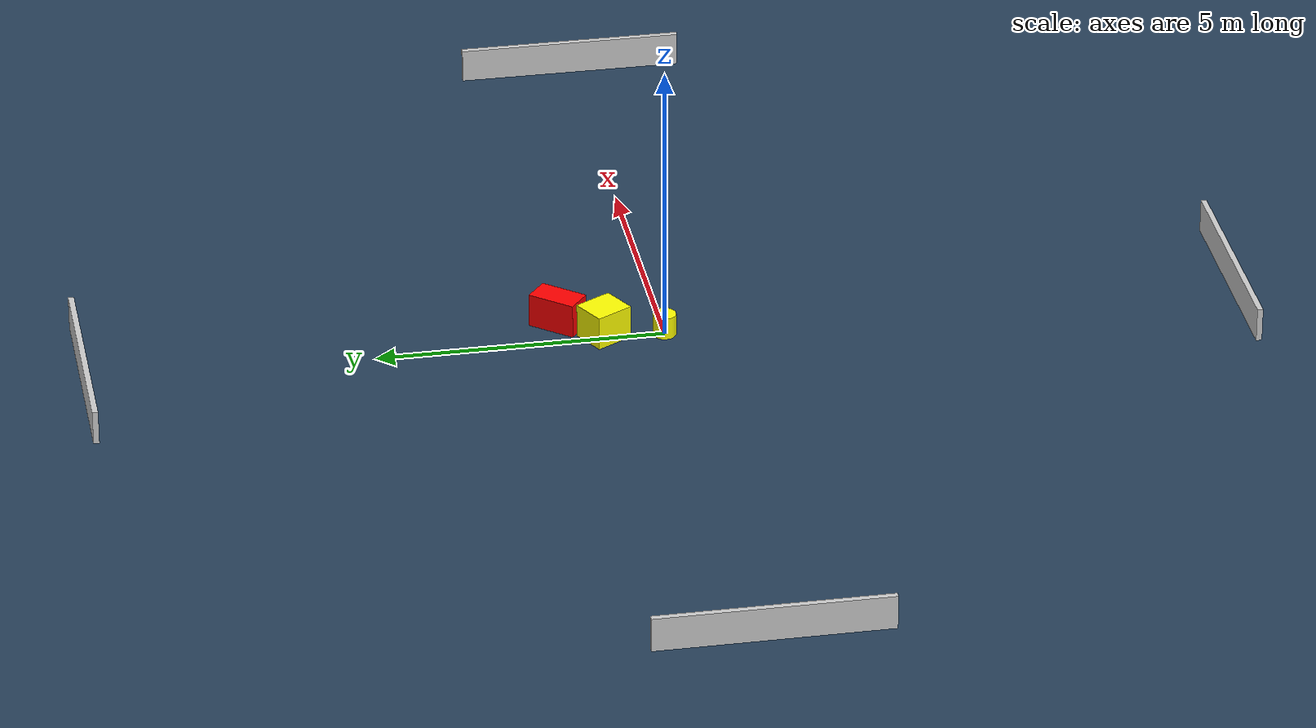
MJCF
<?xml version="1.0" ?>
<mujoco model="generated_environment">
  <option timestep="0.01" integrator="RK4" cone="elliptic"/>
  <default>
    <geom density="1"/>
  </default>
  <asset>
    <texture builtin="gradient" height="3072" name="skybox" rgb1="0.3 0.5 0.7" rgb2="0 0 0" type="skybox" width="512"/>
    <texture builtin="checker" height="300" name="groundplane" rgb1="0.2 0.3 0.4" rgb2="0.1 0.2 0.3" type="2d" width="300"/>
    <material name="groundplane" reflectance="0.2" texrepeat="5 5" texture="groundplane"/>
  </asset>
  <worldbody>
    <light dir="0 0 -1" directional="true" pos="0 0 1.5"/>
    <geom condim="3" friction="0.5 0.005 0.001" material="groundplane" name="floor" pos="0 0 0" size="0 0 0.05" type="plane"/>
    <body name="walls">
      <geom name="wall_1" condim="4" pos="-10.0 0.0 0.3" rgba="0.800000011920929 0.800000011920929 0.800000011920929 1.0" size="0.05 2.0 0.3" type="box"/>
      <geom name="wall_2" condim="4" pos="10.0 0.0 0.3" rgba="0.800000011920929 0.800000011920929 0.800000011920929 1.0" size="0.05 2.0 0.3" type="box"/>
      <geom name="wall_3" condim="4" pos="0.0 -10.0 0.3" rgba="0.800000011920929 0.800000011920929 0.800000011920929 1.0" size="2.0 0.05 0.3" type="box"/>
      <geom name="wall_4" condim="4" pos="0.0 10.0 0.3" rgba="0.800000011920929 0.800000011920929 0.800000011920929 1.0" size="2.0 0.05 0.3" type="box"/>
    </body>
    <body name="robot">
      <joint name="joint_x" type="slide" pos="0 0 0" axis="1 0 0"/>
      <joint name="joint_y" type="slide" pos="0 0 0" axis="0 1 0"/>
      <geom name="robot" type="cylinder" pos="0.0 0.0 0.2" size="0.2 0.2 0.0" mass="5.0" friction="1.0 0.005 0.0001" condim="4" rgba="1.0 1.0 0.0 1.0"/>
    </body>
    <body name="obstacle_1_movable">
      <geom name="obstacle_1_movable" condim="4" pos="0.09743291565328577 1.0418962660380873 0.3" euler="0 0 299.15387737228366" friction="0.0 0.005 0.001" rgba="1.0 1.0 0.0 1.0" size="0.34728742529575185 0.31075005707742615 0.3" type="box" mass="0.1"/>
      <joint type="free"/>
    </body>
    <body name="obstacle_2_static">
      <geom name="obstacle_2_static" condim="4" pos="0.6141966371898795 1.7575577867570709 0.3" euler="0 0 50.81355083281963" friction="0.0 0.005 0.001" rgba="1.0 0.0 0.0 1.0" size="0.4307247581694853 0.24003626679394446 0.3" type="box"/>
    </body>
  </worldbody>
  <actuator>
    <motor name="actuator_x" joint="joint_x" gear="1" ctrlrange="-1 1"/>
    <motor name="actuator_y" joint="joint_y" gear="1" ctrlrange="-1 1"/>
  </actuator>
</mujoco>
